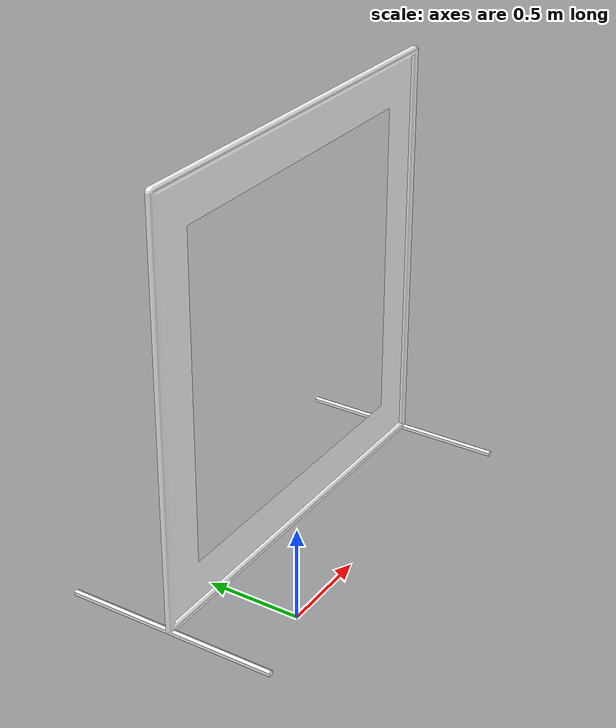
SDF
<?xml version="1.0"?>
<sdf version="1.9">
  <model name="frame_low_full">
    <static>true</static>
    <pose>0 0 0.57 0 0 0</pose>
    <link name="base_link">
      <visual name="visual">
        <geometry>
          <mesh>
            <uri>./meshes/frame_low_full.dae</uri>
          </mesh>
        </geometry>
      </visual>
      <collision name="collision">
        <geometry>
          <mesh>
            <uri>./meshes/frame_low_full.dae</uri>
          </mesh>
        </geometry>
      </collision>
    </link>
  </model>
</sdf>
